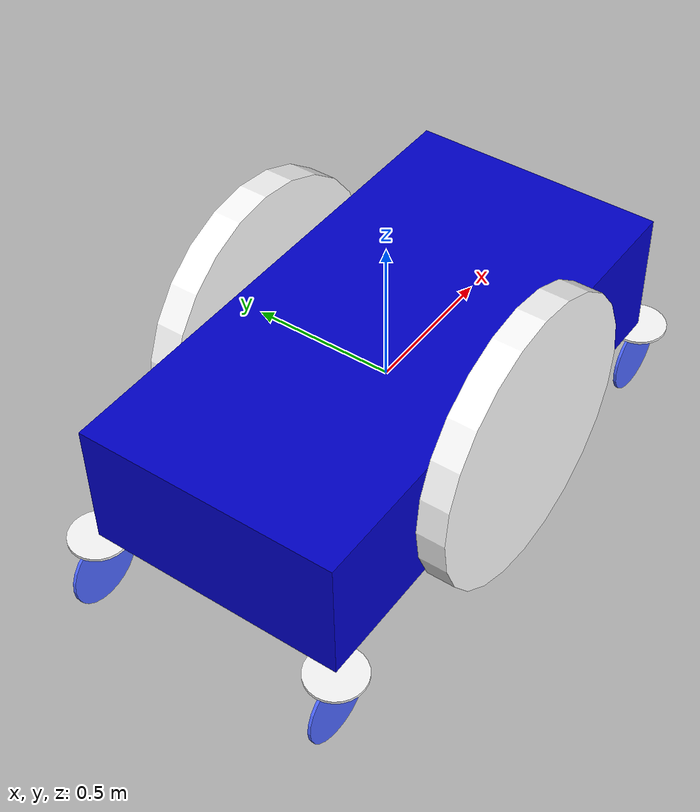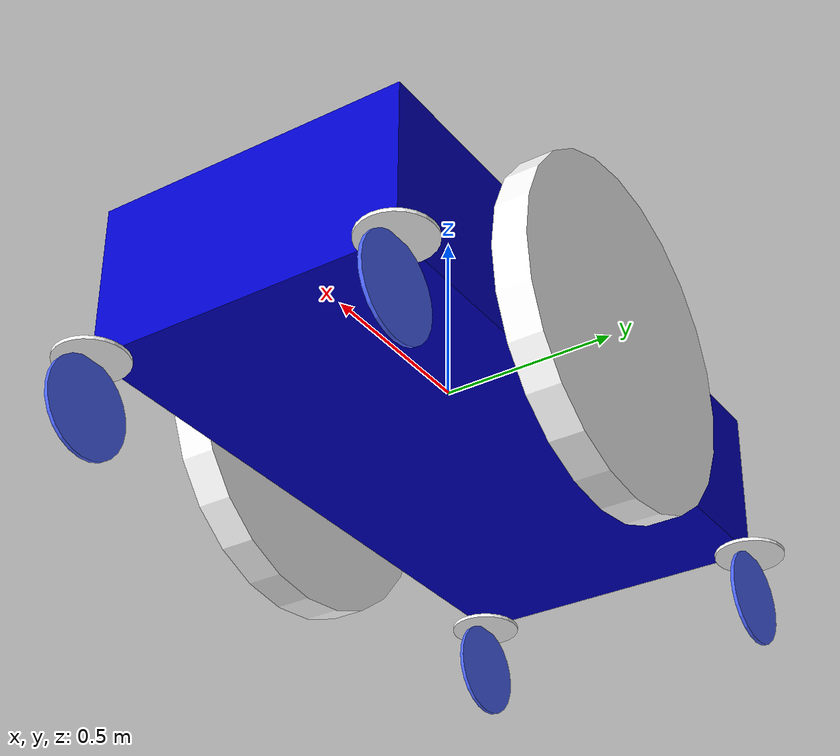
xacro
<?xml version="1.0"?>

<robot name="my_first_robot" xmlns:xacro="http://www.ros.org/wiki/xacro">

  <!-- Define robot constants -->
  <xacro:property name="base_width" value="1.8"/>
  <xacro:property name="base_length" value="0.9"/>
  <xacro:property name="base_height" value="0.45"/>
  <xacro:property name="wheel_length" value="0.1"/>
  <xacro:property name="wheel_radius" value="0.5"/>
  <xacro:property name="circle_for_caster_wheel_length" value="0.01"/>
  <xacro:property name="circle_for_caster_wheel_radius" value="0.1"/>
  <xacro:property name="caster_wheel_length" value="0.01"/>
  <xacro:property name="caster_wheel_radius" value="${(wheel_radius-base_height/2)/2}"/>

  <material name="block_color">
    <color rgba="0 0 0.8 1"/>
  </material>

  <material name="wheel_color">
    <color rgba="1 1 1 1"/>
  </material>

  <material name="caster_wheel_color">
    <color rgba="0.3 0.4 1 1"/>
  </material>

<!-- Base Link-->
  <link name="base_link">
    <visual>
      <geometry>
        <box size="${base_width} ${base_length} ${base_height}"/>
      </geometry>
      <material name = "block_color"/>
    </visual>
    <collision>
      <geometry>
        <box size="${base_width} ${base_length} ${base_height}"/>
      </geometry>
    </collision>
    <inertial>
      <mass value="20.0"/> <!-- масса базы, кг -->
      <origin xyz="0 0 0"/>
      <inertia ixx="1.0" ixy="0.0" ixz="0.0"
              iyy="1.0" iyz="0.0"
              izz="1.5"/>
    </inertial>
  </link>

<!-- Wheel Macro -->
  <xacro:macro name="wheel" params="prefix y_reflect">
    <link name = "${prefix}_link">
      <visual>
        <geometry>
          <cylinder length = "${wheel_length}" radius = "${wheel_radius}"/>
        </geometry>
        <material name="wheel_color"/>
        <origin rpy="1.57075 0 0" xyz="0 0 0"/>
      </visual>
      <collision>
        <geometry>
          <cylinder length = "${wheel_length}" radius = "${wheel_radius}"/>
        </geometry>
        <origin rpy="1.57075 0 0" xyz="0 0 0"/>
      </collision>
      <inertial>
        <mass value="2.0"/>
        <origin xyz="0 0 0"/>
        <inertia ixx="0.05" ixy="0" ixz="0"
                iyy="0.2" iyz="0"
                izz="0.2"/>
      </inertial>
    </link>

    <joint name = "base_to_${prefix}" type = "continuous">
      <parent link = "base_link"/>
      <child link = "${prefix}_link"/>
      <origin xyz="0 ${y_reflect * (base_length/2 + wheel_length/2)} 0"/>
      <axis xyz="0 1 0"/>
    </joint>
  </xacro:macro>

  <xacro:wheel prefix="right_wheel" y_reflect="1" />
  <xacro:wheel prefix="left_wheel" y_reflect="-1" />

<!--Caster Wheel-->
  <xacro:macro name="circle_for_caster_wheel" params="prefix x_reflect y_reflect">
    <link name="${prefix}_link">
      <visual>
        <geometry>
          <cylinder length="${circle_for_caster_wheel_length}" radius = "${circle_for_caster_wheel_radius}" />
        </geometry>
        <material name="wheel_color"/>
        <origin rpy="0 0 0" xyz="0 0 0"/>
      </visual>
      <collision>
        <geometry>
          <cylinder length="${circle_for_caster_wheel_length}" radius = "${circle_for_caster_wheel_radius}" />
        </geometry>
      </collision>
      <inertial>
        <mass value="0.1"/>
        <origin xyz="0 0 0"/>
        <inertia ixx="0.001" ixy="0" ixz="0"
                iyy="0.001" iyz="0"
                izz="0.001"/>
      </inertial>
    </link>

    <joint name = "base_to_${prefix}" type = "fixed">
      <parent link="base_link"/>
      <child link="${prefix}_link"/>
      <origin xyz ="${x_reflect * base_width/2} ${y_reflect * base_length/2} ${-base_height/2 - circle_for_caster_wheel_length/2} "/>
    </joint>
  </xacro:macro>

  <xacro:circle_for_caster_wheel prefix="rd_circle_for_caster_wheel" x_reflect = "1" y_reflect="-1" />
  <xacro:circle_for_caster_wheel prefix="ld_circle_for_caster_wheel" x_reflect = "-1" y_reflect="-1" />
  <xacro:circle_for_caster_wheel prefix="ru_circle_for_caster_wheel" x_reflect = "1" y_reflect="1" />
  <xacro:circle_for_caster_wheel prefix="lu_circle_for_caster_wheel" x_reflect = "-1" y_reflect="1" />

  <xacro:macro name = "caster_wheel" params = "prefix x_reflect y_reflect">
    <link name="${prefix}_link">
      <visual>
        <geometry>
          <cylinder length="${caster_wheel_length}" radius = "${caster_wheel_radius}"/>
        </geometry>
        <material name="caster_wheel_color"/>
        <origin rpy = "1.57075 0 0" xyz = "0 0 0"/>
      </visual>
      <collision>
        <geometry>
          <cylinder length="${caster_wheel_length}" radius = "${caster_wheel_radius}"/>
        </geometry>
        <origin rpy="1.57075 0 0" xyz="0 0 0"/>
      </collision>
      <inertial>
        <mass value="0.5"/>
        <origin xyz="0 0 0"/>
        <inertia ixx="0.01" ixy="0" ixz="0"
                iyy="0.02" iyz="0"
                izz="0.02"/>
      </inertial>
    </link>
    <joint name = "base_to_${prefix}" type = "continuous">
      <parent link="base_link"/>
      <child link="${prefix}_link"/>
      <origin xyz ="${x_reflect * base_width/2} ${y_reflect * base_length/2} ${-base_height/2 - caster_wheel_radius - circle_for_caster_wheel_length/2}"/>
      <axis xyz="0 1 0"/>
    </joint>
  </xacro:macro>

  <xacro:caster_wheel prefix="rd_caster_wheel" x_reflect = "1" y_reflect="-1" />
  <xacro:caster_wheel prefix="ld_caster_wheel" x_reflect = "-1" y_reflect="-1" />
  <xacro:caster_wheel prefix="ru_caster_wheel" x_reflect = "1" y_reflect="1" />
  <xacro:caster_wheel prefix="lu_caster_wheel" x_reflect = "-1" y_reflect="1" />

</robot>
